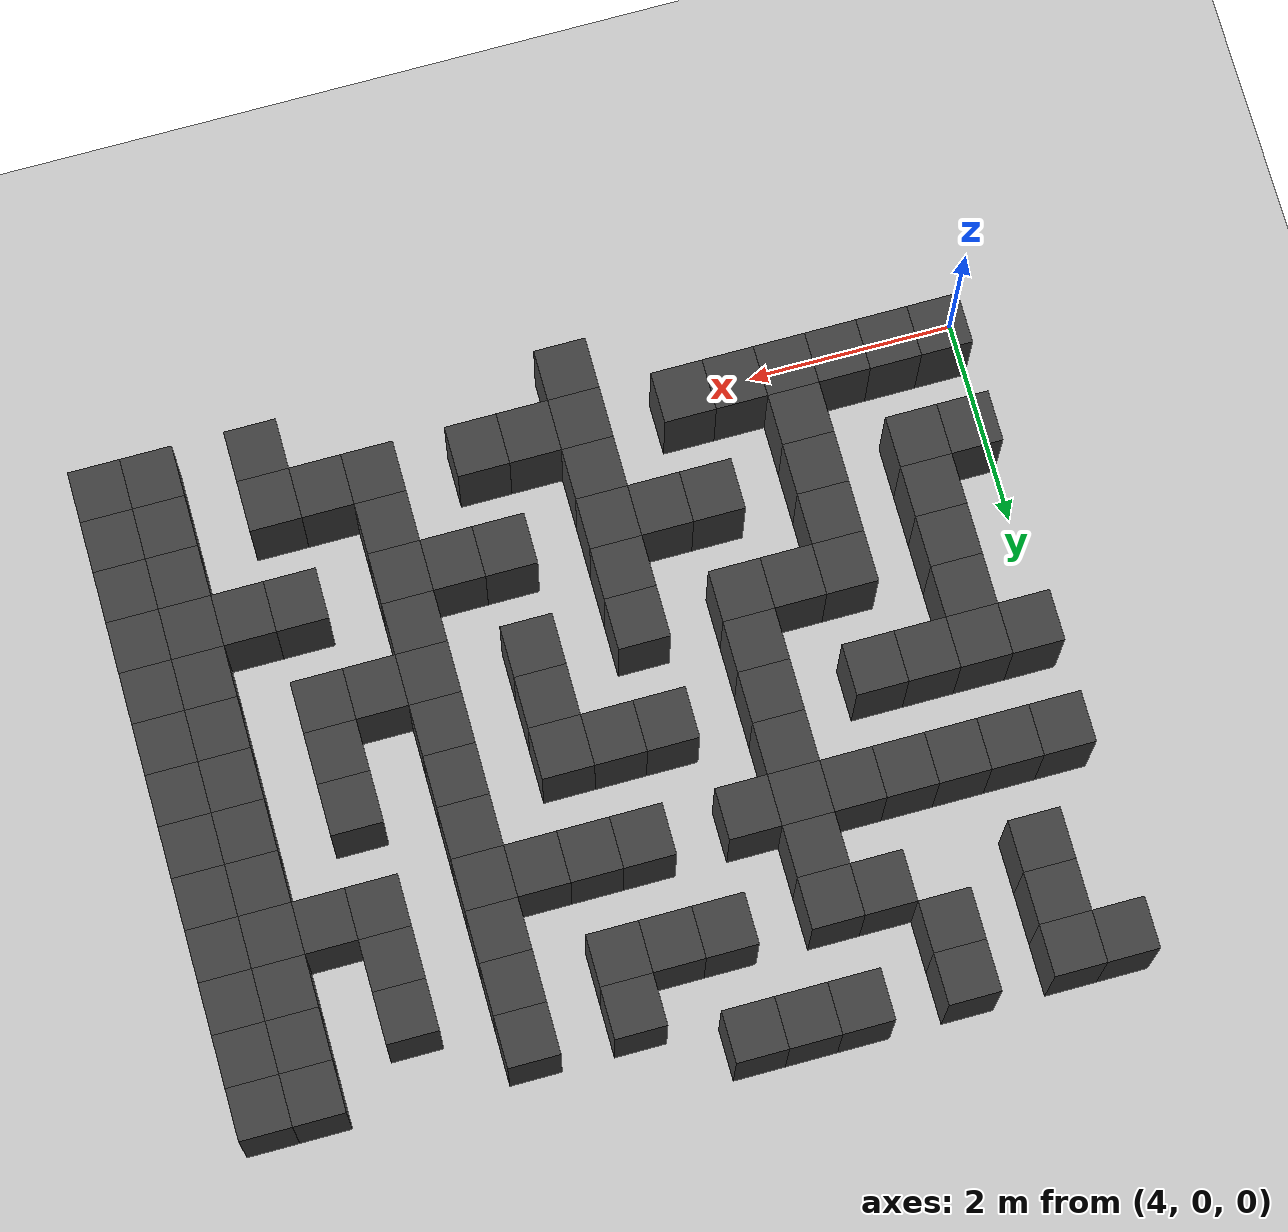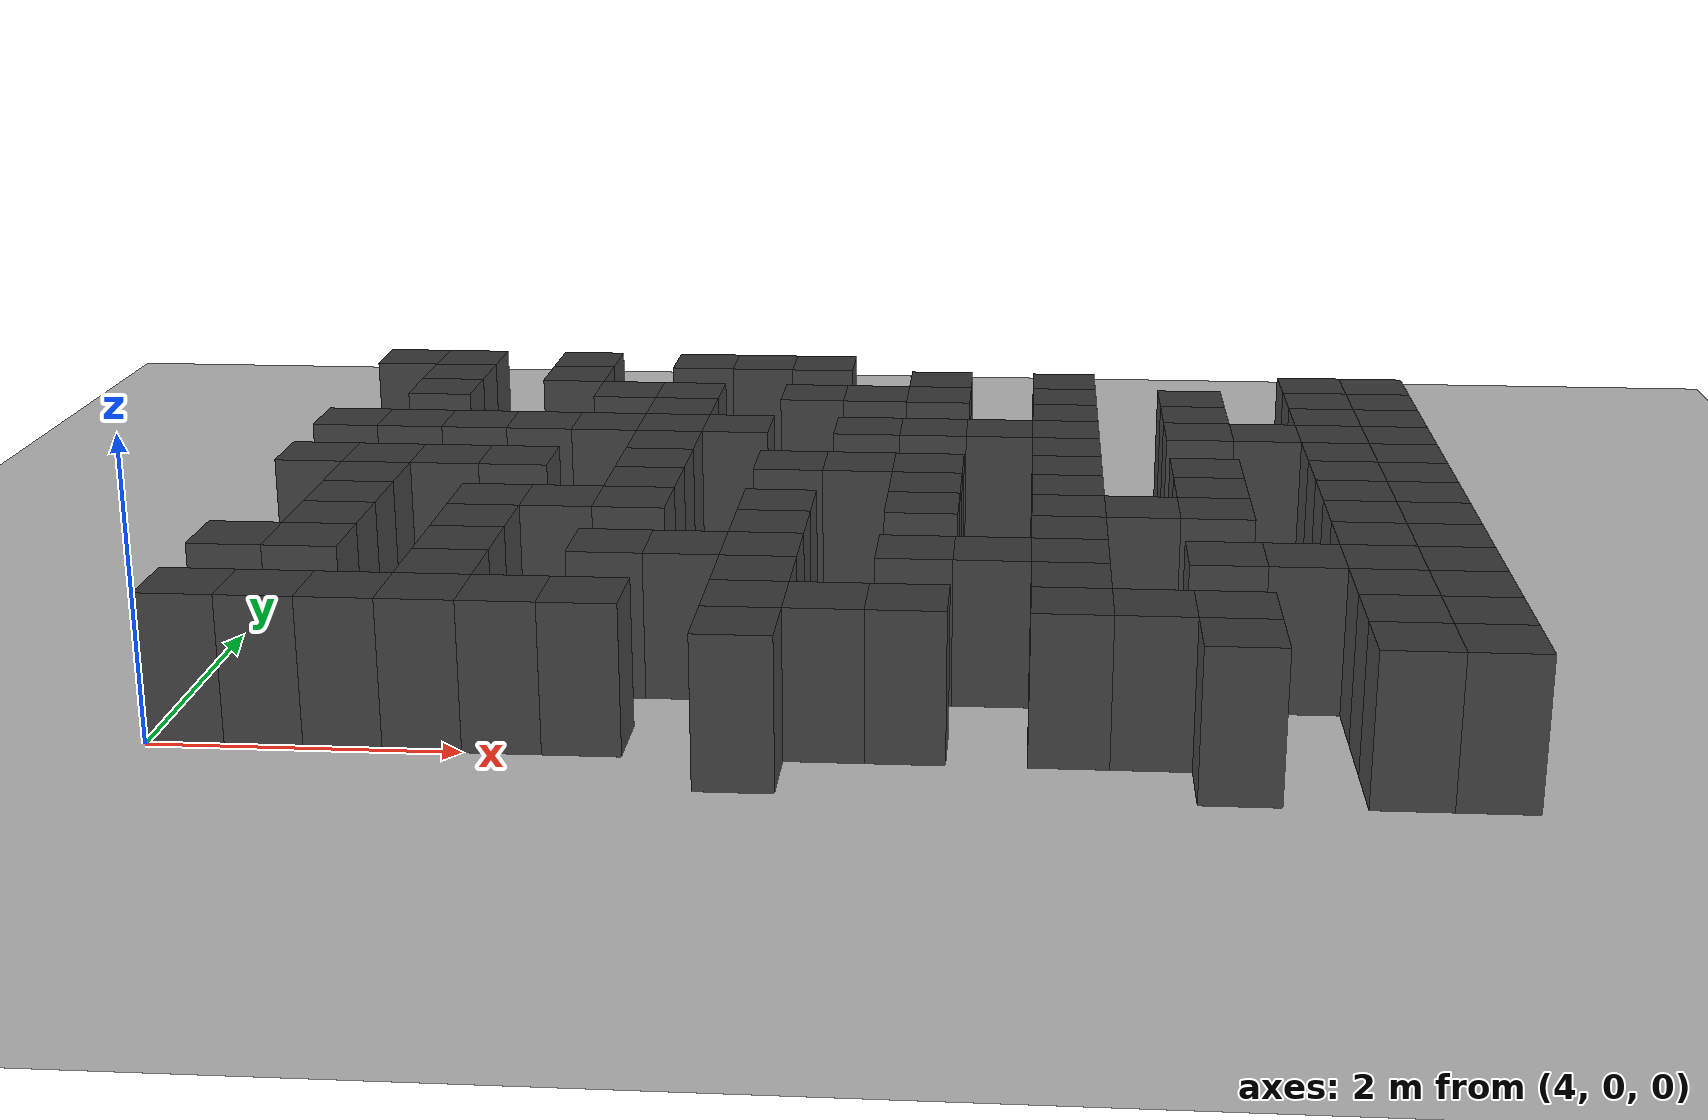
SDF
<sdf version="1.7">
 <world name="map_18347">
  <model name="ground_plane">
   <static>true</static>
   <link name="link">
    <collision name="collision">
     <geometry><plane><normal>0 0 1</normal><size>200 200</size></plane></geometry>
    </collision>
    <visual name="visual">
     <geometry><plane><normal>0 0 1</normal><size>200 200</size></plane></geometry>
     <material><ambient>0.8 0.8 0.8 1</ambient><diffuse>0.8 0.8 0.8 1</diffuse></material>
    </visual>
   </link>
  </model>
  <model name="maze_environment">
   <static>true</static>
   <link name="wall_328">
    <pose>4.250 6.250 0.500 0 0 0</pose>
    <collision name="col"><geometry><box><size>0.5 0.5 1.0</size></box></geometry></collision>
    <visual name="vis">
     <geometry><box><size>0.5 0.5 1.0</size></box></geometry>
     <material><ambient>0.15 0.15 0.15 1</ambient><diffuse>0.25 0.25 0.25 1</diffuse></material>
    </visual>
   </link>
   <link name="wall_329">
    <pose>4.750 6.250 0.500 0 0 0</pose>
    <collision name="col"><geometry><box><size>0.5 0.5 1.0</size></box></geometry></collision>
    <visual name="vis">
     <geometry><box><size>0.5 0.5 1.0</size></box></geometry>
     <material><ambient>0.15 0.15 0.15 1</ambient><diffuse>0.25 0.25 0.25 1</diffuse></material>
    </visual>
   </link>
   <link name="wall_330">
    <pose>5.750 6.250 0.500 0 0 0</pose>
    <collision name="col"><geometry><box><size>0.5 0.5 1.0</size></box></geometry></collision>
    <visual name="vis">
     <geometry><box><size>0.5 0.5 1.0</size></box></geometry>
     <material><ambient>0.15 0.15 0.15 1</ambient><diffuse>0.25 0.25 0.25 1</diffuse></material>
    </visual>
   </link>
   <link name="wall_331">
    <pose>6.750 6.250 0.500 0 0 0</pose>
    <collision name="col"><geometry><box><size>0.5 0.5 1.0</size></box></geometry></collision>
    <visual name="vis">
     <geometry><box><size>0.5 0.5 1.0</size></box></geometry>
     <material><ambient>0.15 0.15 0.15 1</ambient><diffuse>0.25 0.25 0.25 1</diffuse></material>
    </visual>
   </link>
   <link name="wall_332">
    <pose>7.250 6.250 0.500 0 0 0</pose>
    <collision name="col"><geometry><box><size>0.5 0.5 1.0</size></box></geometry></collision>
    <visual name="vis">
     <geometry><box><size>0.5 0.5 1.0</size></box></geometry>
     <material><ambient>0.15 0.15 0.15 1</ambient><diffuse>0.25 0.25 0.25 1</diffuse></material>
    </visual>
   </link>
   <link name="wall_333">
    <pose>7.750 6.250 0.500 0 0 0</pose>
    <collision name="col"><geometry><box><size>0.5 0.5 1.0</size></box></geometry></collision>
    <visual name="vis">
     <geometry><box><size>0.5 0.5 1.0</size></box></geometry>
     <material><ambient>0.15 0.15 0.15 1</ambient><diffuse>0.25 0.25 0.25 1</diffuse></material>
    </visual>
   </link>
   <link name="wall_349">
    <pose>4.750 5.750 0.500 0 0 0</pose>
    <collision name="col"><geometry><box><size>0.5 0.5 1.0</size></box></geometry></collision>
    <visual name="vis">
     <geometry><box><size>0.5 0.5 1.0</size></box></geometry>
     <material><ambient>0.15 0.15 0.15 1</ambient><diffuse>0.25 0.25 0.25 1</diffuse></material>
    </visual>
   </link>
   <link name="wall_350">
    <pose>5.750 5.750 0.500 0 0 0</pose>
    <collision name="col"><geometry><box><size>0.5 0.5 1.0</size></box></geometry></collision>
    <visual name="vis">
     <geometry><box><size>0.5 0.5 1.0</size></box></geometry>
     <material><ambient>0.15 0.15 0.15 1</ambient><diffuse>0.25 0.25 0.25 1</diffuse></material>
    </visual>
   </link>
   <link name="wall_351">
    <pose>8.750 5.750 0.500 0 0 0</pose>
    <collision name="col"><geometry><box><size>0.5 0.5 1.0</size></box></geometry></collision>
    <visual name="vis">
     <geometry><box><size>0.5 0.5 1.0</size></box></geometry>
     <material><ambient>0.15 0.15 0.15 1</ambient><diffuse>0.25 0.25 0.25 1</diffuse></material>
    </visual>
   </link>
   <link name="wall_352">
    <pose>9.750 5.750 0.500 0 0 0</pose>
    <collision name="col"><geometry><box><size>0.5 0.5 1.0</size></box></geometry></collision>
    <visual name="vis">
     <geometry><box><size>0.5 0.5 1.0</size></box></geometry>
     <material><ambient>0.15 0.15 0.15 1</ambient><diffuse>0.25 0.25 0.25 1</diffuse></material>
    </visual>
   </link>
   <link name="wall_353">
    <pose>11.750 5.750 0.500 0 0 0</pose>
    <collision name="col"><geometry><box><size>0.5 0.5 1.0</size></box></geometry></collision>
    <visual name="vis">
     <geometry><box><size>0.5 0.5 1.0</size></box></geometry>
     <material><ambient>0.15 0.15 0.15 1</ambient><diffuse>0.25 0.25 0.25 1</diffuse></material>
    </visual>
   </link>
   <link name="wall_354">
    <pose>12.250 5.750 0.500 0 0 0</pose>
    <collision name="col"><geometry><box><size>0.5 0.5 1.0</size></box></geometry></collision>
    <visual name="vis">
     <geometry><box><size>0.5 0.5 1.0</size></box></geometry>
     <material><ambient>0.15 0.15 0.15 1</ambient><diffuse>0.25 0.25 0.25 1</diffuse></material>
    </visual>
   </link>
   <link name="wall_380">
    <pose>4.750 5.250 0.500 0 0 0</pose>
    <collision name="col"><geometry><box><size>0.5 0.5 1.0</size></box></geometry></collision>
    <visual name="vis">
     <geometry><box><size>0.5 0.5 1.0</size></box></geometry>
     <material><ambient>0.15 0.15 0.15 1</ambient><diffuse>0.25 0.25 0.25 1</diffuse></material>
    </visual>
   </link>
   <link name="wall_381">
    <pose>6.250 5.250 0.500 0 0 0</pose>
    <collision name="col"><geometry><box><size>0.5 0.5 1.0</size></box></geometry></collision>
    <visual name="vis">
     <geometry><box><size>0.5 0.5 1.0</size></box></geometry>
     <material><ambient>0.15 0.15 0.15 1</ambient><diffuse>0.25 0.25 0.25 1</diffuse></material>
    </visual>
   </link>
   <link name="wall_382">
    <pose>6.750 5.250 0.500 0 0 0</pose>
    <collision name="col"><geometry><box><size>0.5 0.5 1.0</size></box></geometry></collision>
    <visual name="vis">
     <geometry><box><size>0.5 0.5 1.0</size></box></geometry>
     <material><ambient>0.15 0.15 0.15 1</ambient><diffuse>0.25 0.25 0.25 1</diffuse></material>
    </visual>
   </link>
   <link name="wall_383">
    <pose>7.750 5.250 0.500 0 0 0</pose>
    <collision name="col"><geometry><box><size>0.5 0.5 1.0</size></box></geometry></collision>
    <visual name="vis">
     <geometry><box><size>0.5 0.5 1.0</size></box></geometry>
     <material><ambient>0.15 0.15 0.15 1</ambient><diffuse>0.25 0.25 0.25 1</diffuse></material>
    </visual>
   </link>
   <link name="wall_384">
    <pose>8.250 5.250 0.500 0 0 0</pose>
    <collision name="col"><geometry><box><size>0.5 0.5 1.0</size></box></geometry></collision>
    <visual name="vis">
     <geometry><box><size>0.5 0.5 1.0</size></box></geometry>
     <material><ambient>0.15 0.15 0.15 1</ambient><diffuse>0.25 0.25 0.25 1</diffuse></material>
    </visual>
   </link>
   <link name="wall_385">
    <pose>8.750 5.250 0.500 0 0 0</pose>
    <collision name="col"><geometry><box><size>0.5 0.5 1.0</size></box></geometry></collision>
    <visual name="vis">
     <geometry><box><size>0.5 0.5 1.0</size></box></geometry>
     <material><ambient>0.15 0.15 0.15 1</ambient><diffuse>0.25 0.25 0.25 1</diffuse></material>
    </visual>
   </link>
   <link name="wall_386">
    <pose>9.750 5.250 0.500 0 0 0</pose>
    <collision name="col"><geometry><box><size>0.5 0.5 1.0</size></box></geometry></collision>
    <visual name="vis">
     <geometry><box><size>0.5 0.5 1.0</size></box></geometry>
     <material><ambient>0.15 0.15 0.15 1</ambient><diffuse>0.25 0.25 0.25 1</diffuse></material>
    </visual>
   </link>
   <link name="wall_387">
    <pose>10.750 5.250 0.500 0 0 0</pose>
    <collision name="col"><geometry><box><size>0.5 0.5 1.0</size></box></geometry></collision>
    <visual name="vis">
     <geometry><box><size>0.5 0.5 1.0</size></box></geometry>
     <material><ambient>0.15 0.15 0.15 1</ambient><diffuse>0.25 0.25 0.25 1</diffuse></material>
    </visual>
   </link>
   <link name="wall_388">
    <pose>11.750 5.250 0.500 0 0 0</pose>
    <collision name="col"><geometry><box><size>0.5 0.5 1.0</size></box></geometry></collision>
    <visual name="vis">
     <geometry><box><size>0.5 0.5 1.0</size></box></geometry>
     <material><ambient>0.15 0.15 0.15 1</ambient><diffuse>0.25 0.25 0.25 1</diffuse></material>
    </visual>
   </link>
   <link name="wall_389">
    <pose>12.250 5.250 0.500 0 0 0</pose>
    <collision name="col"><geometry><box><size>0.5 0.5 1.0</size></box></geometry></collision>
    <visual name="vis">
     <geometry><box><size>0.5 0.5 1.0</size></box></geometry>
     <material><ambient>0.15 0.15 0.15 1</ambient><diffuse>0.25 0.25 0.25 1</diffuse></material>
    </visual>
   </link>
   <link name="wall_399">
    <pose>6.750 4.750 0.500 0 0 0</pose>
    <collision name="col"><geometry><box><size>0.5 0.5 1.0</size></box></geometry></collision>
    <visual name="vis">
     <geometry><box><size>0.5 0.5 1.0</size></box></geometry>
     <material><ambient>0.15 0.15 0.15 1</ambient><diffuse>0.25 0.25 0.25 1</diffuse></material>
    </visual>
   </link>
   <link name="wall_400">
    <pose>9.750 4.750 0.500 0 0 0</pose>
    <collision name="col"><geometry><box><size>0.5 0.5 1.0</size></box></geometry></collision>
    <visual name="vis">
     <geometry><box><size>0.5 0.5 1.0</size></box></geometry>
     <material><ambient>0.15 0.15 0.15 1</ambient><diffuse>0.25 0.25 0.25 1</diffuse></material>
    </visual>
   </link>
   <link name="wall_401">
    <pose>10.750 4.750 0.500 0 0 0</pose>
    <collision name="col"><geometry><box><size>0.5 0.5 1.0</size></box></geometry></collision>
    <visual name="vis">
     <geometry><box><size>0.5 0.5 1.0</size></box></geometry>
     <material><ambient>0.15 0.15 0.15 1</ambient><diffuse>0.25 0.25 0.25 1</diffuse></material>
    </visual>
   </link>
   <link name="wall_402">
    <pose>11.750 4.750 0.500 0 0 0</pose>
    <collision name="col"><geometry><box><size>0.5 0.5 1.0</size></box></geometry></collision>
    <visual name="vis">
     <geometry><box><size>0.5 0.5 1.0</size></box></geometry>
     <material><ambient>0.15 0.15 0.15 1</ambient><diffuse>0.25 0.25 0.25 1</diffuse></material>
    </visual>
   </link>
   <link name="wall_403">
    <pose>12.250 4.750 0.500 0 0 0</pose>
    <collision name="col"><geometry><box><size>0.5 0.5 1.0</size></box></geometry></collision>
    <visual name="vis">
     <geometry><box><size>0.5 0.5 1.0</size></box></geometry>
     <material><ambient>0.15 0.15 0.15 1</ambient><diffuse>0.25 0.25 0.25 1</diffuse></material>
    </visual>
   </link>
   <link name="wall_427">
    <pose>4.250 4.250 0.500 0 0 0</pose>
    <collision name="col"><geometry><box><size>0.5 0.5 1.0</size></box></geometry></collision>
    <visual name="vis">
     <geometry><box><size>0.5 0.5 1.0</size></box></geometry>
     <material><ambient>0.15 0.15 0.15 1</ambient><diffuse>0.25 0.25 0.25 1</diffuse></material>
    </visual>
   </link>
   <link name="wall_428">
    <pose>4.750 4.250 0.500 0 0 0</pose>
    <collision name="col"><geometry><box><size>0.5 0.5 1.0</size></box></geometry></collision>
    <visual name="vis">
     <geometry><box><size>0.5 0.5 1.0</size></box></geometry>
     <material><ambient>0.15 0.15 0.15 1</ambient><diffuse>0.25 0.25 0.25 1</diffuse></material>
    </visual>
   </link>
   <link name="wall_429">
    <pose>5.250 4.250 0.500 0 0 0</pose>
    <collision name="col"><geometry><box><size>0.5 0.5 1.0</size></box></geometry></collision>
    <visual name="vis">
     <geometry><box><size>0.5 0.5 1.0</size></box></geometry>
     <material><ambient>0.15 0.15 0.15 1</ambient><diffuse>0.25 0.25 0.25 1</diffuse></material>
    </visual>
   </link>
   <link name="wall_430">
    <pose>5.750 4.250 0.500 0 0 0</pose>
    <collision name="col"><geometry><box><size>0.5 0.5 1.0</size></box></geometry></collision>
    <visual name="vis">
     <geometry><box><size>0.5 0.5 1.0</size></box></geometry>
     <material><ambient>0.15 0.15 0.15 1</ambient><diffuse>0.25 0.25 0.25 1</diffuse></material>
    </visual>
   </link>
   <link name="wall_431">
    <pose>6.250 4.250 0.500 0 0 0</pose>
    <collision name="col"><geometry><box><size>0.5 0.5 1.0</size></box></geometry></collision>
    <visual name="vis">
     <geometry><box><size>0.5 0.5 1.0</size></box></geometry>
     <material><ambient>0.15 0.15 0.15 1</ambient><diffuse>0.25 0.25 0.25 1</diffuse></material>
    </visual>
   </link>
   <link name="wall_432">
    <pose>6.750 4.250 0.500 0 0 0</pose>
    <collision name="col"><geometry><box><size>0.5 0.5 1.0</size></box></geometry></collision>
    <visual name="vis">
     <geometry><box><size>0.5 0.5 1.0</size></box></geometry>
     <material><ambient>0.15 0.15 0.15 1</ambient><diffuse>0.25 0.25 0.25 1</diffuse></material>
    </visual>
   </link>
   <link name="wall_433">
    <pose>7.250 4.250 0.500 0 0 0</pose>
    <collision name="col"><geometry><box><size>0.5 0.5 1.0</size></box></geometry></collision>
    <visual name="vis">
     <geometry><box><size>0.5 0.5 1.0</size></box></geometry>
     <material><ambient>0.15 0.15 0.15 1</ambient><diffuse>0.25 0.25 0.25 1</diffuse></material>
    </visual>
   </link>
   <link name="wall_434">
    <pose>8.250 4.250 0.500 0 0 0</pose>
    <collision name="col"><geometry><box><size>0.5 0.5 1.0</size></box></geometry></collision>
    <visual name="vis">
     <geometry><box><size>0.5 0.5 1.0</size></box></geometry>
     <material><ambient>0.15 0.15 0.15 1</ambient><diffuse>0.25 0.25 0.25 1</diffuse></material>
    </visual>
   </link>
   <link name="wall_435">
    <pose>8.750 4.250 0.500 0 0 0</pose>
    <collision name="col"><geometry><box><size>0.5 0.5 1.0</size></box></geometry></collision>
    <visual name="vis">
     <geometry><box><size>0.5 0.5 1.0</size></box></geometry>
     <material><ambient>0.15 0.15 0.15 1</ambient><diffuse>0.25 0.25 0.25 1</diffuse></material>
    </visual>
   </link>
   <link name="wall_436">
    <pose>9.250 4.250 0.500 0 0 0</pose>
    <collision name="col"><geometry><box><size>0.5 0.5 1.0</size></box></geometry></collision>
    <visual name="vis">
     <geometry><box><size>0.5 0.5 1.0</size></box></geometry>
     <material><ambient>0.15 0.15 0.15 1</ambient><diffuse>0.25 0.25 0.25 1</diffuse></material>
    </visual>
   </link>
   <link name="wall_437">
    <pose>9.750 4.250 0.500 0 0 0</pose>
    <collision name="col"><geometry><box><size>0.5 0.5 1.0</size></box></geometry></collision>
    <visual name="vis">
     <geometry><box><size>0.5 0.5 1.0</size></box></geometry>
     <material><ambient>0.15 0.15 0.15 1</ambient><diffuse>0.25 0.25 0.25 1</diffuse></material>
    </visual>
   </link>
   <link name="wall_438">
    <pose>10.750 4.250 0.500 0 0 0</pose>
    <collision name="col"><geometry><box><size>0.5 0.5 1.0</size></box></geometry></collision>
    <visual name="vis">
     <geometry><box><size>0.5 0.5 1.0</size></box></geometry>
     <material><ambient>0.15 0.15 0.15 1</ambient><diffuse>0.25 0.25 0.25 1</diffuse></material>
    </visual>
   </link>
   <link name="wall_439">
    <pose>11.250 4.250 0.500 0 0 0</pose>
    <collision name="col"><geometry><box><size>0.5 0.5 1.0</size></box></geometry></collision>
    <visual name="vis">
     <geometry><box><size>0.5 0.5 1.0</size></box></geometry>
     <material><ambient>0.15 0.15 0.15 1</ambient><diffuse>0.25 0.25 0.25 1</diffuse></material>
    </visual>
   </link>
   <link name="wall_440">
    <pose>11.750 4.250 0.500 0 0 0</pose>
    <collision name="col"><geometry><box><size>0.5 0.5 1.0</size></box></geometry></collision>
    <visual name="vis">
     <geometry><box><size>0.5 0.5 1.0</size></box></geometry>
     <material><ambient>0.15 0.15 0.15 1</ambient><diffuse>0.25 0.25 0.25 1</diffuse></material>
    </visual>
   </link>
   <link name="wall_441">
    <pose>12.250 4.250 0.500 0 0 0</pose>
    <collision name="col"><geometry><box><size>0.5 0.5 1.0</size></box></geometry></collision>
    <visual name="vis">
     <geometry><box><size>0.5 0.5 1.0</size></box></geometry>
     <material><ambient>0.15 0.15 0.15 1</ambient><diffuse>0.25 0.25 0.25 1</diffuse></material>
    </visual>
   </link>
   <link name="wall_453">
    <pose>6.750 3.750 0.500 0 0 0</pose>
    <collision name="col"><geometry><box><size>0.5 0.5 1.0</size></box></geometry></collision>
    <visual name="vis">
     <geometry><box><size>0.5 0.5 1.0</size></box></geometry>
     <material><ambient>0.15 0.15 0.15 1</ambient><diffuse>0.25 0.25 0.25 1</diffuse></material>
    </visual>
   </link>
   <link name="wall_454">
    <pose>9.750 3.750 0.500 0 0 0</pose>
    <collision name="col"><geometry><box><size>0.5 0.5 1.0</size></box></geometry></collision>
    <visual name="vis">
     <geometry><box><size>0.5 0.5 1.0</size></box></geometry>
     <material><ambient>0.15 0.15 0.15 1</ambient><diffuse>0.25 0.25 0.25 1</diffuse></material>
    </visual>
   </link>
   <link name="wall_455">
    <pose>11.750 3.750 0.500 0 0 0</pose>
    <collision name="col"><geometry><box><size>0.5 0.5 1.0</size></box></geometry></collision>
    <visual name="vis">
     <geometry><box><size>0.5 0.5 1.0</size></box></geometry>
     <material><ambient>0.15 0.15 0.15 1</ambient><diffuse>0.25 0.25 0.25 1</diffuse></material>
    </visual>
   </link>
   <link name="wall_456">
    <pose>12.250 3.750 0.500 0 0 0</pose>
    <collision name="col"><geometry><box><size>0.5 0.5 1.0</size></box></geometry></collision>
    <visual name="vis">
     <geometry><box><size>0.5 0.5 1.0</size></box></geometry>
     <material><ambient>0.15 0.15 0.15 1</ambient><diffuse>0.25 0.25 0.25 1</diffuse></material>
    </visual>
   </link>
   <link name="wall_480">
    <pose>4.250 3.250 0.500 0 0 0</pose>
    <collision name="col"><geometry><box><size>0.5 0.5 1.0</size></box></geometry></collision>
    <visual name="vis">
     <geometry><box><size>0.5 0.5 1.0</size></box></geometry>
     <material><ambient>0.15 0.15 0.15 1</ambient><diffuse>0.25 0.25 0.25 1</diffuse></material>
    </visual>
   </link>
   <link name="wall_481">
    <pose>4.750 3.250 0.500 0 0 0</pose>
    <collision name="col"><geometry><box><size>0.5 0.5 1.0</size></box></geometry></collision>
    <visual name="vis">
     <geometry><box><size>0.5 0.5 1.0</size></box></geometry>
     <material><ambient>0.15 0.15 0.15 1</ambient><diffuse>0.25 0.25 0.25 1</diffuse></material>
    </visual>
   </link>
   <link name="wall_482">
    <pose>5.250 3.250 0.500 0 0 0</pose>
    <collision name="col"><geometry><box><size>0.5 0.5 1.0</size></box></geometry></collision>
    <visual name="vis">
     <geometry><box><size>0.5 0.5 1.0</size></box></geometry>
     <material><ambient>0.15 0.15 0.15 1</ambient><diffuse>0.25 0.25 0.25 1</diffuse></material>
    </visual>
   </link>
   <link name="wall_483">
    <pose>5.750 3.250 0.500 0 0 0</pose>
    <collision name="col"><geometry><box><size>0.5 0.5 1.0</size></box></geometry></collision>
    <visual name="vis">
     <geometry><box><size>0.5 0.5 1.0</size></box></geometry>
     <material><ambient>0.15 0.15 0.15 1</ambient><diffuse>0.25 0.25 0.25 1</diffuse></material>
    </visual>
   </link>
   <link name="wall_484">
    <pose>6.750 3.250 0.500 0 0 0</pose>
    <collision name="col"><geometry><box><size>0.5 0.5 1.0</size></box></geometry></collision>
    <visual name="vis">
     <geometry><box><size>0.5 0.5 1.0</size></box></geometry>
     <material><ambient>0.15 0.15 0.15 1</ambient><diffuse>0.25 0.25 0.25 1</diffuse></material>
    </visual>
   </link>
   <link name="wall_485">
    <pose>7.750 3.250 0.500 0 0 0</pose>
    <collision name="col"><geometry><box><size>0.5 0.5 1.0</size></box></geometry></collision>
    <visual name="vis">
     <geometry><box><size>0.5 0.5 1.0</size></box></geometry>
     <material><ambient>0.15 0.15 0.15 1</ambient><diffuse>0.25 0.25 0.25 1</diffuse></material>
    </visual>
   </link>
   <link name="wall_486">
    <pose>8.250 3.250 0.500 0 0 0</pose>
    <collision name="col"><geometry><box><size>0.5 0.5 1.0</size></box></geometry></collision>
    <visual name="vis">
     <geometry><box><size>0.5 0.5 1.0</size></box></geometry>
     <material><ambient>0.15 0.15 0.15 1</ambient><diffuse>0.25 0.25 0.25 1</diffuse></material>
    </visual>
   </link>
   <link name="wall_487">
    <pose>8.750 3.250 0.500 0 0 0</pose>
    <collision name="col"><geometry><box><size>0.5 0.5 1.0</size></box></geometry></collision>
    <visual name="vis">
     <geometry><box><size>0.5 0.5 1.0</size></box></geometry>
     <material><ambient>0.15 0.15 0.15 1</ambient><diffuse>0.25 0.25 0.25 1</diffuse></material>
    </visual>
   </link>
   <link name="wall_488">
    <pose>9.750 3.250 0.500 0 0 0</pose>
    <collision name="col"><geometry><box><size>0.5 0.5 1.0</size></box></geometry></collision>
    <visual name="vis">
     <geometry><box><size>0.5 0.5 1.0</size></box></geometry>
     <material><ambient>0.15 0.15 0.15 1</ambient><diffuse>0.25 0.25 0.25 1</diffuse></material>
    </visual>
   </link>
   <link name="wall_489">
    <pose>10.750 3.250 0.500 0 0 0</pose>
    <collision name="col"><geometry><box><size>0.5 0.5 1.0</size></box></geometry></collision>
    <visual name="vis">
     <geometry><box><size>0.5 0.5 1.0</size></box></geometry>
     <material><ambient>0.15 0.15 0.15 1</ambient><diffuse>0.25 0.25 0.25 1</diffuse></material>
    </visual>
   </link>
   <link name="wall_490">
    <pose>11.750 3.250 0.500 0 0 0</pose>
    <collision name="col"><geometry><box><size>0.5 0.5 1.0</size></box></geometry></collision>
    <visual name="vis">
     <geometry><box><size>0.5 0.5 1.0</size></box></geometry>
     <material><ambient>0.15 0.15 0.15 1</ambient><diffuse>0.25 0.25 0.25 1</diffuse></material>
    </visual>
   </link>
   <link name="wall_491">
    <pose>12.250 3.250 0.500 0 0 0</pose>
    <collision name="col"><geometry><box><size>0.5 0.5 1.0</size></box></geometry></collision>
    <visual name="vis">
     <geometry><box><size>0.5 0.5 1.0</size></box></geometry>
     <material><ambient>0.15 0.15 0.15 1</ambient><diffuse>0.25 0.25 0.25 1</diffuse></material>
    </visual>
   </link>
   <link name="wall_500">
    <pose>4.750 2.750 0.500 0 0 0</pose>
    <collision name="col"><geometry><box><size>0.5 0.5 1.0</size></box></geometry></collision>
    <visual name="vis">
     <geometry><box><size>0.5 0.5 1.0</size></box></geometry>
     <material><ambient>0.15 0.15 0.15 1</ambient><diffuse>0.25 0.25 0.25 1</diffuse></material>
    </visual>
   </link>
   <link name="wall_501">
    <pose>6.750 2.750 0.500 0 0 0</pose>
    <collision name="col"><geometry><box><size>0.5 0.5 1.0</size></box></geometry></collision>
    <visual name="vis">
     <geometry><box><size>0.5 0.5 1.0</size></box></geometry>
     <material><ambient>0.15 0.15 0.15 1</ambient><diffuse>0.25 0.25 0.25 1</diffuse></material>
    </visual>
   </link>
   <link name="wall_502">
    <pose>8.750 2.750 0.500 0 0 0</pose>
    <collision name="col"><geometry><box><size>0.5 0.5 1.0</size></box></geometry></collision>
    <visual name="vis">
     <geometry><box><size>0.5 0.5 1.0</size></box></geometry>
     <material><ambient>0.15 0.15 0.15 1</ambient><diffuse>0.25 0.25 0.25 1</diffuse></material>
    </visual>
   </link>
   <link name="wall_503">
    <pose>9.750 2.750 0.500 0 0 0</pose>
    <collision name="col"><geometry><box><size>0.5 0.5 1.0</size></box></geometry></collision>
    <visual name="vis">
     <geometry><box><size>0.5 0.5 1.0</size></box></geometry>
     <material><ambient>0.15 0.15 0.15 1</ambient><diffuse>0.25 0.25 0.25 1</diffuse></material>
    </visual>
   </link>
   <link name="wall_504">
    <pose>10.750 2.750 0.500 0 0 0</pose>
    <collision name="col"><geometry><box><size>0.5 0.5 1.0</size></box></geometry></collision>
    <visual name="vis">
     <geometry><box><size>0.5 0.5 1.0</size></box></geometry>
     <material><ambient>0.15 0.15 0.15 1</ambient><diffuse>0.25 0.25 0.25 1</diffuse></material>
    </visual>
   </link>
   <link name="wall_505">
    <pose>11.750 2.750 0.500 0 0 0</pose>
    <collision name="col"><geometry><box><size>0.5 0.5 1.0</size></box></geometry></collision>
    <visual name="vis">
     <geometry><box><size>0.5 0.5 1.0</size></box></geometry>
     <material><ambient>0.15 0.15 0.15 1</ambient><diffuse>0.25 0.25 0.25 1</diffuse></material>
    </visual>
   </link>
   <link name="wall_506">
    <pose>12.250 2.750 0.500 0 0 0</pose>
    <collision name="col"><geometry><box><size>0.5 0.5 1.0</size></box></geometry></collision>
    <visual name="vis">
     <geometry><box><size>0.5 0.5 1.0</size></box></geometry>
     <material><ambient>0.15 0.15 0.15 1</ambient><diffuse>0.25 0.25 0.25 1</diffuse></material>
    </visual>
   </link>
   <link name="wall_531">
    <pose>4.750 2.250 0.500 0 0 0</pose>
    <collision name="col"><geometry><box><size>0.5 0.5 1.0</size></box></geometry></collision>
    <visual name="vis">
     <geometry><box><size>0.5 0.5 1.0</size></box></geometry>
     <material><ambient>0.15 0.15 0.15 1</ambient><diffuse>0.25 0.25 0.25 1</diffuse></material>
    </visual>
   </link>
   <link name="wall_532">
    <pose>5.750 2.250 0.500 0 0 0</pose>
    <collision name="col"><geometry><box><size>0.5 0.5 1.0</size></box></geometry></collision>
    <visual name="vis">
     <geometry><box><size>0.5 0.5 1.0</size></box></geometry>
     <material><ambient>0.15 0.15 0.15 1</ambient><diffuse>0.25 0.25 0.25 1</diffuse></material>
    </visual>
   </link>
   <link name="wall_533">
    <pose>6.250 2.250 0.500 0 0 0</pose>
    <collision name="col"><geometry><box><size>0.5 0.5 1.0</size></box></geometry></collision>
    <visual name="vis">
     <geometry><box><size>0.5 0.5 1.0</size></box></geometry>
     <material><ambient>0.15 0.15 0.15 1</ambient><diffuse>0.25 0.25 0.25 1</diffuse></material>
    </visual>
   </link>
   <link name="wall_534">
    <pose>6.750 2.250 0.500 0 0 0</pose>
    <collision name="col"><geometry><box><size>0.5 0.5 1.0</size></box></geometry></collision>
    <visual name="vis">
     <geometry><box><size>0.5 0.5 1.0</size></box></geometry>
     <material><ambient>0.15 0.15 0.15 1</ambient><diffuse>0.25 0.25 0.25 1</diffuse></material>
    </visual>
   </link>
   <link name="wall_535">
    <pose>7.750 2.250 0.500 0 0 0</pose>
    <collision name="col"><geometry><box><size>0.5 0.5 1.0</size></box></geometry></collision>
    <visual name="vis">
     <geometry><box><size>0.5 0.5 1.0</size></box></geometry>
     <material><ambient>0.15 0.15 0.15 1</ambient><diffuse>0.25 0.25 0.25 1</diffuse></material>
    </visual>
   </link>
   <link name="wall_536">
    <pose>8.750 2.250 0.500 0 0 0</pose>
    <collision name="col"><geometry><box><size>0.5 0.5 1.0</size></box></geometry></collision>
    <visual name="vis">
     <geometry><box><size>0.5 0.5 1.0</size></box></geometry>
     <material><ambient>0.15 0.15 0.15 1</ambient><diffuse>0.25 0.25 0.25 1</diffuse></material>
    </visual>
   </link>
   <link name="wall_537">
    <pose>9.750 2.250 0.500 0 0 0</pose>
    <collision name="col"><geometry><box><size>0.5 0.5 1.0</size></box></geometry></collision>
    <visual name="vis">
     <geometry><box><size>0.5 0.5 1.0</size></box></geometry>
     <material><ambient>0.15 0.15 0.15 1</ambient><diffuse>0.25 0.25 0.25 1</diffuse></material>
    </visual>
   </link>
   <link name="wall_538">
    <pose>10.250 2.250 0.500 0 0 0</pose>
    <collision name="col"><geometry><box><size>0.5 0.5 1.0</size></box></geometry></collision>
    <visual name="vis">
     <geometry><box><size>0.5 0.5 1.0</size></box></geometry>
     <material><ambient>0.15 0.15 0.15 1</ambient><diffuse>0.25 0.25 0.25 1</diffuse></material>
    </visual>
   </link>
   <link name="wall_539">
    <pose>10.750 2.250 0.500 0 0 0</pose>
    <collision name="col"><geometry><box><size>0.5 0.5 1.0</size></box></geometry></collision>
    <visual name="vis">
     <geometry><box><size>0.5 0.5 1.0</size></box></geometry>
     <material><ambient>0.15 0.15 0.15 1</ambient><diffuse>0.25 0.25 0.25 1</diffuse></material>
    </visual>
   </link>
   <link name="wall_540">
    <pose>11.750 2.250 0.500 0 0 0</pose>
    <collision name="col"><geometry><box><size>0.5 0.5 1.0</size></box></geometry></collision>
    <visual name="vis">
     <geometry><box><size>0.5 0.5 1.0</size></box></geometry>
     <material><ambient>0.15 0.15 0.15 1</ambient><diffuse>0.25 0.25 0.25 1</diffuse></material>
    </visual>
   </link>
   <link name="wall_541">
    <pose>12.250 2.250 0.500 0 0 0</pose>
    <collision name="col"><geometry><box><size>0.5 0.5 1.0</size></box></geometry></collision>
    <visual name="vis">
     <geometry><box><size>0.5 0.5 1.0</size></box></geometry>
     <material><ambient>0.15 0.15 0.15 1</ambient><diffuse>0.25 0.25 0.25 1</diffuse></material>
    </visual>
   </link>
   <link name="wall_549">
    <pose>4.750 1.750 0.500 0 0 0</pose>
    <collision name="col"><geometry><box><size>0.5 0.5 1.0</size></box></geometry></collision>
    <visual name="vis">
     <geometry><box><size>0.5 0.5 1.0</size></box></geometry>
     <material><ambient>0.15 0.15 0.15 1</ambient><diffuse>0.25 0.25 0.25 1</diffuse></material>
    </visual>
   </link>
   <link name="wall_550">
    <pose>5.750 1.750 0.500 0 0 0</pose>
    <collision name="col"><geometry><box><size>0.5 0.5 1.0</size></box></geometry></collision>
    <visual name="vis">
     <geometry><box><size>0.5 0.5 1.0</size></box></geometry>
     <material><ambient>0.15 0.15 0.15 1</ambient><diffuse>0.25 0.25 0.25 1</diffuse></material>
    </visual>
   </link>
   <link name="wall_551">
    <pose>7.750 1.750 0.500 0 0 0</pose>
    <collision name="col"><geometry><box><size>0.5 0.5 1.0</size></box></geometry></collision>
    <visual name="vis">
     <geometry><box><size>0.5 0.5 1.0</size></box></geometry>
     <material><ambient>0.15 0.15 0.15 1</ambient><diffuse>0.25 0.25 0.25 1</diffuse></material>
    </visual>
   </link>
   <link name="wall_552">
    <pose>9.750 1.750 0.500 0 0 0</pose>
    <collision name="col"><geometry><box><size>0.5 0.5 1.0</size></box></geometry></collision>
    <visual name="vis">
     <geometry><box><size>0.5 0.5 1.0</size></box></geometry>
     <material><ambient>0.15 0.15 0.15 1</ambient><diffuse>0.25 0.25 0.25 1</diffuse></material>
    </visual>
   </link>
   <link name="wall_553">
    <pose>11.750 1.750 0.500 0 0 0</pose>
    <collision name="col"><geometry><box><size>0.5 0.5 1.0</size></box></geometry></collision>
    <visual name="vis">
     <geometry><box><size>0.5 0.5 1.0</size></box></geometry>
     <material><ambient>0.15 0.15 0.15 1</ambient><diffuse>0.25 0.25 0.25 1</diffuse></material>
    </visual>
   </link>
   <link name="wall_554">
    <pose>12.250 1.750 0.500 0 0 0</pose>
    <collision name="col"><geometry><box><size>0.5 0.5 1.0</size></box></geometry></collision>
    <visual name="vis">
     <geometry><box><size>0.5 0.5 1.0</size></box></geometry>
     <material><ambient>0.15 0.15 0.15 1</ambient><diffuse>0.25 0.25 0.25 1</diffuse></material>
    </visual>
   </link>
   <link name="wall_580">
    <pose>4.250 1.250 0.500 0 0 0</pose>
    <collision name="col"><geometry><box><size>0.5 0.5 1.0</size></box></geometry></collision>
    <visual name="vis">
     <geometry><box><size>0.5 0.5 1.0</size></box></geometry>
     <material><ambient>0.15 0.15 0.15 1</ambient><diffuse>0.25 0.25 0.25 1</diffuse></material>
    </visual>
   </link>
   <link name="wall_581">
    <pose>4.750 1.250 0.500 0 0 0</pose>
    <collision name="col"><geometry><box><size>0.5 0.5 1.0</size></box></geometry></collision>
    <visual name="vis">
     <geometry><box><size>0.5 0.5 1.0</size></box></geometry>
     <material><ambient>0.15 0.15 0.15 1</ambient><diffuse>0.25 0.25 0.25 1</diffuse></material>
    </visual>
   </link>
   <link name="wall_582">
    <pose>5.750 1.250 0.500 0 0 0</pose>
    <collision name="col"><geometry><box><size>0.5 0.5 1.0</size></box></geometry></collision>
    <visual name="vis">
     <geometry><box><size>0.5 0.5 1.0</size></box></geometry>
     <material><ambient>0.15 0.15 0.15 1</ambient><diffuse>0.25 0.25 0.25 1</diffuse></material>
    </visual>
   </link>
   <link name="wall_583">
    <pose>6.750 1.250 0.500 0 0 0</pose>
    <collision name="col"><geometry><box><size>0.5 0.5 1.0</size></box></geometry></collision>
    <visual name="vis">
     <geometry><box><size>0.5 0.5 1.0</size></box></geometry>
     <material><ambient>0.15 0.15 0.15 1</ambient><diffuse>0.25 0.25 0.25 1</diffuse></material>
    </visual>
   </link>
   <link name="wall_584">
    <pose>7.250 1.250 0.500 0 0 0</pose>
    <collision name="col"><geometry><box><size>0.5 0.5 1.0</size></box></geometry></collision>
    <visual name="vis">
     <geometry><box><size>0.5 0.5 1.0</size></box></geometry>
     <material><ambient>0.15 0.15 0.15 1</ambient><diffuse>0.25 0.25 0.25 1</diffuse></material>
    </visual>
   </link>
   <link name="wall_585">
    <pose>7.750 1.250 0.500 0 0 0</pose>
    <collision name="col"><geometry><box><size>0.5 0.5 1.0</size></box></geometry></collision>
    <visual name="vis">
     <geometry><box><size>0.5 0.5 1.0</size></box></geometry>
     <material><ambient>0.15 0.15 0.15 1</ambient><diffuse>0.25 0.25 0.25 1</diffuse></material>
    </visual>
   </link>
   <link name="wall_586">
    <pose>8.750 1.250 0.500 0 0 0</pose>
    <collision name="col"><geometry><box><size>0.5 0.5 1.0</size></box></geometry></collision>
    <visual name="vis">
     <geometry><box><size>0.5 0.5 1.0</size></box></geometry>
     <material><ambient>0.15 0.15 0.15 1</ambient><diffuse>0.25 0.25 0.25 1</diffuse></material>
    </visual>
   </link>
   <link name="wall_587">
    <pose>9.250 1.250 0.500 0 0 0</pose>
    <collision name="col"><geometry><box><size>0.5 0.5 1.0</size></box></geometry></collision>
    <visual name="vis">
     <geometry><box><size>0.5 0.5 1.0</size></box></geometry>
     <material><ambient>0.15 0.15 0.15 1</ambient><diffuse>0.25 0.25 0.25 1</diffuse></material>
    </visual>
   </link>
   <link name="wall_588">
    <pose>9.750 1.250 0.500 0 0 0</pose>
    <collision name="col"><geometry><box><size>0.5 0.5 1.0</size></box></geometry></collision>
    <visual name="vis">
     <geometry><box><size>0.5 0.5 1.0</size></box></geometry>
     <material><ambient>0.15 0.15 0.15 1</ambient><diffuse>0.25 0.25 0.25 1</diffuse></material>
    </visual>
   </link>
   <link name="wall_589">
    <pose>10.750 1.250 0.500 0 0 0</pose>
    <collision name="col"><geometry><box><size>0.5 0.5 1.0</size></box></geometry></collision>
    <visual name="vis">
     <geometry><box><size>0.5 0.5 1.0</size></box></geometry>
     <material><ambient>0.15 0.15 0.15 1</ambient><diffuse>0.25 0.25 0.25 1</diffuse></material>
    </visual>
   </link>
   <link name="wall_590">
    <pose>11.250 1.250 0.500 0 0 0</pose>
    <collision name="col"><geometry><box><size>0.5 0.5 1.0</size></box></geometry></collision>
    <visual name="vis">
     <geometry><box><size>0.5 0.5 1.0</size></box></geometry>
     <material><ambient>0.15 0.15 0.15 1</ambient><diffuse>0.25 0.25 0.25 1</diffuse></material>
    </visual>
   </link>
   <link name="wall_591">
    <pose>11.750 1.250 0.500 0 0 0</pose>
    <collision name="col"><geometry><box><size>0.5 0.5 1.0</size></box></geometry></collision>
    <visual name="vis">
     <geometry><box><size>0.5 0.5 1.0</size></box></geometry>
     <material><ambient>0.15 0.15 0.15 1</ambient><diffuse>0.25 0.25 0.25 1</diffuse></material>
    </visual>
   </link>
   <link name="wall_592">
    <pose>12.250 1.250 0.500 0 0 0</pose>
    <collision name="col"><geometry><box><size>0.5 0.5 1.0</size></box></geometry></collision>
    <visual name="vis">
     <geometry><box><size>0.5 0.5 1.0</size></box></geometry>
     <material><ambient>0.15 0.15 0.15 1</ambient><diffuse>0.25 0.25 0.25 1</diffuse></material>
    </visual>
   </link>
   <link name="wall_601">
    <pose>5.750 0.750 0.500 0 0 0</pose>
    <collision name="col"><geometry><box><size>0.5 0.5 1.0</size></box></geometry></collision>
    <visual name="vis">
     <geometry><box><size>0.5 0.5 1.0</size></box></geometry>
     <material><ambient>0.15 0.15 0.15 1</ambient><diffuse>0.25 0.25 0.25 1</diffuse></material>
    </visual>
   </link>
   <link name="wall_602">
    <pose>7.750 0.750 0.500 0 0 0</pose>
    <collision name="col"><geometry><box><size>0.5 0.5 1.0</size></box></geometry></collision>
    <visual name="vis">
     <geometry><box><size>0.5 0.5 1.0</size></box></geometry>
     <material><ambient>0.15 0.15 0.15 1</ambient><diffuse>0.25 0.25 0.25 1</diffuse></material>
    </visual>
   </link>
   <link name="wall_603">
    <pose>9.750 0.750 0.500 0 0 0</pose>
    <collision name="col"><geometry><box><size>0.5 0.5 1.0</size></box></geometry></collision>
    <visual name="vis">
     <geometry><box><size>0.5 0.5 1.0</size></box></geometry>
     <material><ambient>0.15 0.15 0.15 1</ambient><diffuse>0.25 0.25 0.25 1</diffuse></material>
    </visual>
   </link>
   <link name="wall_604">
    <pose>11.750 0.750 0.500 0 0 0</pose>
    <collision name="col"><geometry><box><size>0.5 0.5 1.0</size></box></geometry></collision>
    <visual name="vis">
     <geometry><box><size>0.5 0.5 1.0</size></box></geometry>
     <material><ambient>0.15 0.15 0.15 1</ambient><diffuse>0.25 0.25 0.25 1</diffuse></material>
    </visual>
   </link>
   <link name="wall_605">
    <pose>12.250 0.750 0.500 0 0 0</pose>
    <collision name="col"><geometry><box><size>0.5 0.5 1.0</size></box></geometry></collision>
    <visual name="vis">
     <geometry><box><size>0.5 0.5 1.0</size></box></geometry>
     <material><ambient>0.15 0.15 0.15 1</ambient><diffuse>0.25 0.25 0.25 1</diffuse></material>
    </visual>
   </link>
   <link name="wall_631">
    <pose>4.250 0.250 0.500 0 0 0</pose>
    <collision name="col"><geometry><box><size>0.5 0.5 1.0</size></box></geometry></collision>
    <visual name="vis">
     <geometry><box><size>0.5 0.5 1.0</size></box></geometry>
     <material><ambient>0.15 0.15 0.15 1</ambient><diffuse>0.25 0.25 0.25 1</diffuse></material>
    </visual>
   </link>
   <link name="wall_632">
    <pose>4.750 0.250 0.500 0 0 0</pose>
    <collision name="col"><geometry><box><size>0.5 0.5 1.0</size></box></geometry></collision>
    <visual name="vis">
     <geometry><box><size>0.5 0.5 1.0</size></box></geometry>
     <material><ambient>0.15 0.15 0.15 1</ambient><diffuse>0.25 0.25 0.25 1</diffuse></material>
    </visual>
   </link>
   <link name="wall_633">
    <pose>5.250 0.250 0.500 0 0 0</pose>
    <collision name="col"><geometry><box><size>0.5 0.5 1.0</size></box></geometry></collision>
    <visual name="vis">
     <geometry><box><size>0.5 0.5 1.0</size></box></geometry>
     <material><ambient>0.15 0.15 0.15 1</ambient><diffuse>0.25 0.25 0.25 1</diffuse></material>
    </visual>
   </link>
   <link name="wall_634">
    <pose>5.750 0.250 0.500 0 0 0</pose>
    <collision name="col"><geometry><box><size>0.5 0.5 1.0</size></box></geometry></collision>
    <visual name="vis">
     <geometry><box><size>0.5 0.5 1.0</size></box></geometry>
     <material><ambient>0.15 0.15 0.15 1</ambient><diffuse>0.25 0.25 0.25 1</diffuse></material>
    </visual>
   </link>
   <link name="wall_635">
    <pose>6.250 0.250 0.500 0 0 0</pose>
    <collision name="col"><geometry><box><size>0.5 0.5 1.0</size></box></geometry></collision>
    <visual name="vis">
     <geometry><box><size>0.5 0.5 1.0</size></box></geometry>
     <material><ambient>0.15 0.15 0.15 1</ambient><diffuse>0.25 0.25 0.25 1</diffuse></material>
    </visual>
   </link>
   <link name="wall_636">
    <pose>6.750 0.250 0.500 0 0 0</pose>
    <collision name="col"><geometry><box><size>0.5 0.5 1.0</size></box></geometry></collision>
    <visual name="vis">
     <geometry><box><size>0.5 0.5 1.0</size></box></geometry>
     <material><ambient>0.15 0.15 0.15 1</ambient><diffuse>0.25 0.25 0.25 1</diffuse></material>
    </visual>
   </link>
   <link name="wall_637">
    <pose>7.750 0.250 0.500 0 0 0</pose>
    <collision name="col"><geometry><box><size>0.5 0.5 1.0</size></box></geometry></collision>
    <visual name="vis">
     <geometry><box><size>0.5 0.5 1.0</size></box></geometry>
     <material><ambient>0.15 0.15 0.15 1</ambient><diffuse>0.25 0.25 0.25 1</diffuse></material>
    </visual>
   </link>
   <link name="wall_638">
    <pose>8.250 0.250 0.500 0 0 0</pose>
    <collision name="col"><geometry><box><size>0.5 0.5 1.0</size></box></geometry></collision>
    <visual name="vis">
     <geometry><box><size>0.5 0.5 1.0</size></box></geometry>
     <material><ambient>0.15 0.15 0.15 1</ambient><diffuse>0.25 0.25 0.25 1</diffuse></material>
    </visual>
   </link>
   <link name="wall_639">
    <pose>8.750 0.250 0.500 0 0 0</pose>
    <collision name="col"><geometry><box><size>0.5 0.5 1.0</size></box></geometry></collision>
    <visual name="vis">
     <geometry><box><size>0.5 0.5 1.0</size></box></geometry>
     <material><ambient>0.15 0.15 0.15 1</ambient><diffuse>0.25 0.25 0.25 1</diffuse></material>
    </visual>
   </link>
   <link name="wall_640">
    <pose>9.750 0.250 0.500 0 0 0</pose>
    <collision name="col"><geometry><box><size>0.5 0.5 1.0</size></box></geometry></collision>
    <visual name="vis">
     <geometry><box><size>0.5 0.5 1.0</size></box></geometry>
     <material><ambient>0.15 0.15 0.15 1</ambient><diffuse>0.25 0.25 0.25 1</diffuse></material>
    </visual>
   </link>
   <link name="wall_641">
    <pose>10.250 0.250 0.500 0 0 0</pose>
    <collision name="col"><geometry><box><size>0.5 0.5 1.0</size></box></geometry></collision>
    <visual name="vis">
     <geometry><box><size>0.5 0.5 1.0</size></box></geometry>
     <material><ambient>0.15 0.15 0.15 1</ambient><diffuse>0.25 0.25 0.25 1</diffuse></material>
    </visual>
   </link>
   <link name="wall_642">
    <pose>10.750 0.250 0.500 0 0 0</pose>
    <collision name="col"><geometry><box><size>0.5 0.5 1.0</size></box></geometry></collision>
    <visual name="vis">
     <geometry><box><size>0.5 0.5 1.0</size></box></geometry>
     <material><ambient>0.15 0.15 0.15 1</ambient><diffuse>0.25 0.25 0.25 1</diffuse></material>
    </visual>
   </link>
   <link name="wall_643">
    <pose>11.750 0.250 0.500 0 0 0</pose>
    <collision name="col"><geometry><box><size>0.5 0.5 1.0</size></box></geometry></collision>
    <visual name="vis">
     <geometry><box><size>0.5 0.5 1.0</size></box></geometry>
     <material><ambient>0.15 0.15 0.15 1</ambient><diffuse>0.25 0.25 0.25 1</diffuse></material>
    </visual>
   </link>
   <link name="wall_644">
    <pose>12.250 0.250 0.500 0 0 0</pose>
    <collision name="col"><geometry><box><size>0.5 0.5 1.0</size></box></geometry></collision>
    <visual name="vis">
     <geometry><box><size>0.5 0.5 1.0</size></box></geometry>
     <material><ambient>0.15 0.15 0.15 1</ambient><diffuse>0.25 0.25 0.25 1</diffuse></material>
    </visual>
   </link>
   <link name="wall_653">
    <pose>7.750 -0.250 0.500 0 0 0</pose>
    <collision name="col"><geometry><box><size>0.5 0.5 1.0</size></box></geometry></collision>
    <visual name="vis">
     <geometry><box><size>0.5 0.5 1.0</size></box></geometry>
     <material><ambient>0.15 0.15 0.15 1</ambient><diffuse>0.25 0.25 0.25 1</diffuse></material>
    </visual>
   </link>
   <link name="wall_654">
    <pose>10.750 -0.250 0.500 0 0 0</pose>
    <collision name="col"><geometry><box><size>0.5 0.5 1.0</size></box></geometry></collision>
    <visual name="vis">
     <geometry><box><size>0.5 0.5 1.0</size></box></geometry>
     <material><ambient>0.15 0.15 0.15 1</ambient><diffuse>0.25 0.25 0.25 1</diffuse></material>
    </visual>
   </link>
   <link name="wall_655">
    <pose>11.750 -0.250 0.500 0 0 0</pose>
    <collision name="col"><geometry><box><size>0.5 0.5 1.0</size></box></geometry></collision>
    <visual name="vis">
     <geometry><box><size>0.5 0.5 1.0</size></box></geometry>
     <material><ambient>0.15 0.15 0.15 1</ambient><diffuse>0.25 0.25 0.25 1</diffuse></material>
    </visual>
   </link>
   <link name="wall_656">
    <pose>12.250 -0.250 0.500 0 0 0</pose>
    <collision name="col"><geometry><box><size>0.5 0.5 1.0</size></box></geometry></collision>
    <visual name="vis">
     <geometry><box><size>0.5 0.5 1.0</size></box></geometry>
     <material><ambient>0.15 0.15 0.15 1</ambient><diffuse>0.25 0.25 0.25 1</diffuse></material>
    </visual>
   </link>
  </model>
 </world>
</sdf>
